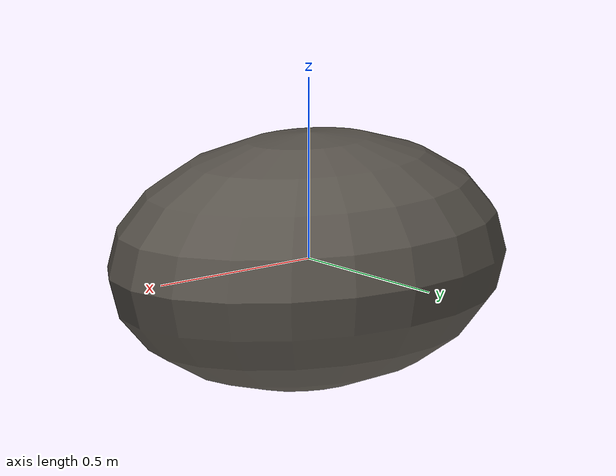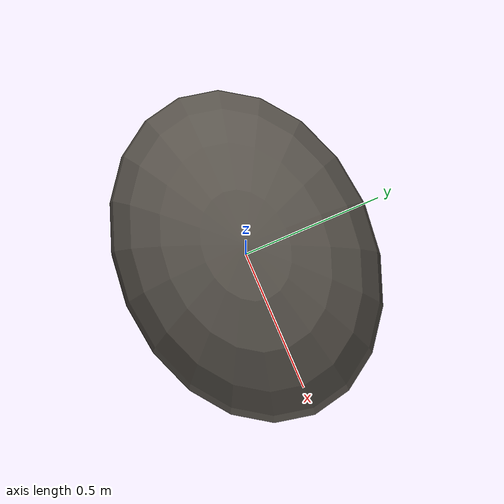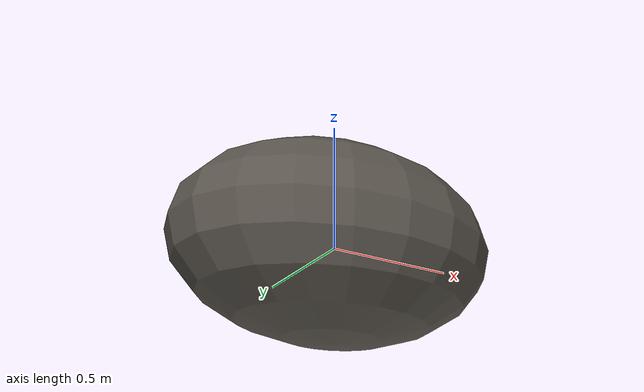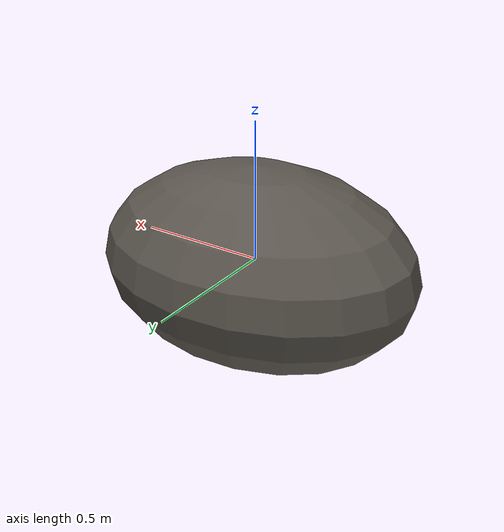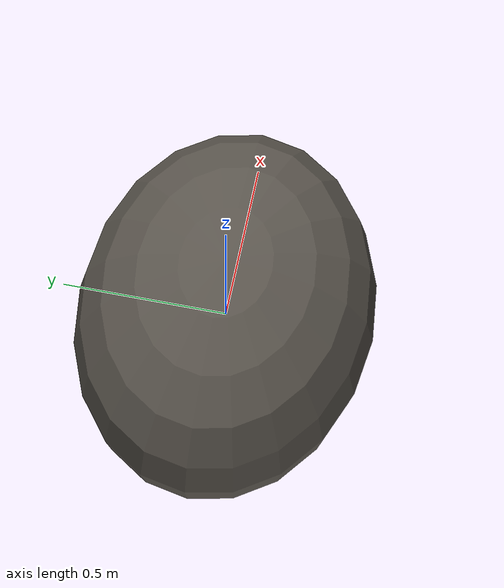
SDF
<?xml version="1.0"?>
<sdf version="1.9">
  <model name="rock_01">
    <static>false</static>
    <link name="link">
      <collision name="collision">
        <geometry>
          <ellipsoid>
            <radii>0.6 0.45 0.35</radii>
          </ellipsoid>
        </geometry>
      </collision>

      <visual name="visual">
        <geometry>
          <ellipsoid>
            <radii>0.6 0.45 0.35</radii>
          </ellipsoid>
        </geometry>
        <material>
          <ambient>0.35 0.33 0.30 1</ambient>
          <diffuse>0.35 0.33 0.30 1</diffuse>
          <specular>0.05 0.05 0.05 1</specular>
        </material>
      </visual>
    </link>
  </model>
</sdf>
